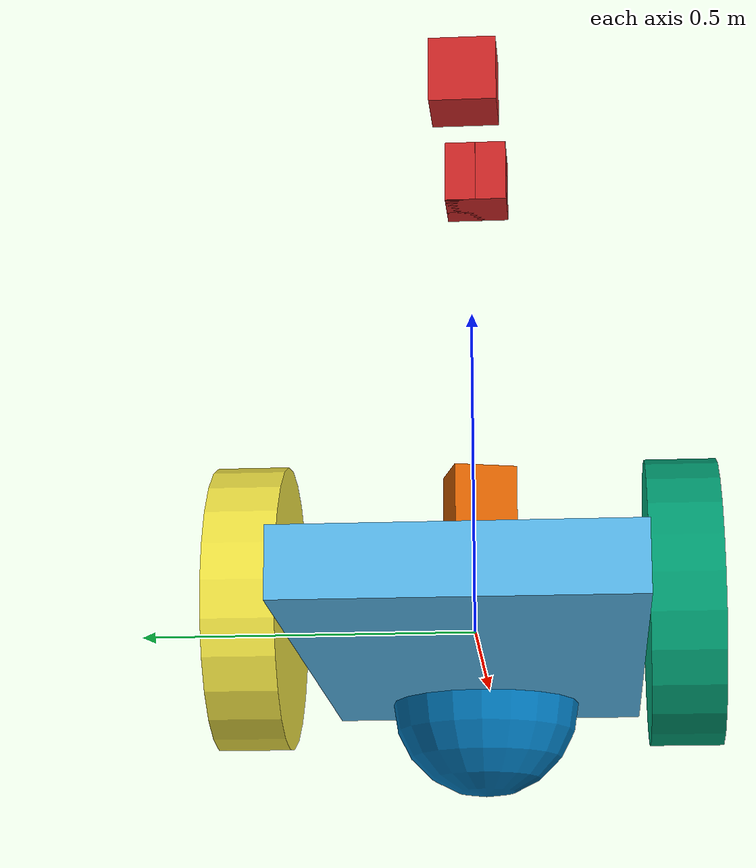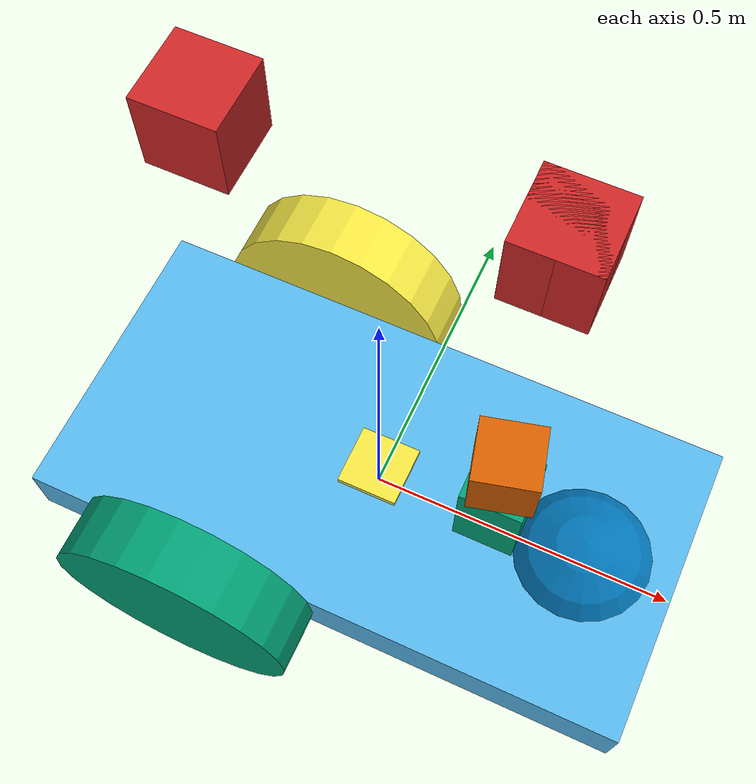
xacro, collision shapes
<?xml version="1.0"?>
<robot xmlns:xacro="http://www.ros.org/wiki/xacro" name="igvc_robot">

  <xacro:property name="base_link_length" value="0.5"/>
  <xacro:property name="base_link_radius" value="0.4"/>
  <xacro:property name="M_PI" value="3.1415926535897931" />
  <xacro:property name="laser_min_range" value="0.1"/>
  <xacro:property name="laser_max_range" value="200.0"/>
  <xacro:property name="samples" value="40000"/>
  <xacro:property name="resolution" value="0.002"/>
  <xacro:property name="noise_mean" value="0.0"/>
  <xacro:property name="noise_stddev" value="0.01"/>

  <xacro:property name="mass" value="0.4" />
  <xacro:property name="length" value="0.1" />
  <xacro:property name="width" value="0.06" />
  <xacro:property name="height" value="0.06" />
  <!-- Dummy Link and Joint -->
  <link name="base_footprint">
  </link>

  <!-- Base Link -->
  <link name="base_link">
    <visual>
      <geometry>
        <box size="1 0.5 0.1"/>
      </geometry>
      <origin rpy="0 0 0" xyz="0 0 0"/>
    </visual>
    <collision>
      <geometry>
        <box size="1 0.5 0.1"/>
      </geometry>
      <origin rpy="0 0 0" xyz="0 0 0"/>
    </collision>
    <inertial>
      <origin rpy="0 0 0" xyz="0 0 0"/>
      <mass value="1"/>
      <inertia ixx="0.083" ixy="0" ixz="0" iyy="0.083" iyz="0" izz="0.083"/>
    </inertial>
  </link>

  <!-- Left Wheel Link -->
  <link name="right_wheel">
    <visual>
      <geometry>
        <cylinder length="0.1" radius="0.2"/>
      </geometry>
      <origin rpy="1.5708 1.5708 0" xyz="0 -0.3 0"/>
    </visual>
    <collision>
      <geometry>
        <cylinder length="0.1" radius="0.2"/>
      </geometry>
      <origin rpy="1.5708 1.5708 0" xyz="0 -0.3 0"/>
    </collision>
    <inertial>
      <origin rpy="1.5708 1.5708 0" xyz="0 -0.3 0"/>
      <mass value="0.5"/>
      <inertia ixx="0.006" ixy="0" ixz="0" iyy="0.006" iyz="0" izz="0.001"/>
    </inertial>
  </link>

  <!-- Right Wheel Link -->
  <link name="left_wheel">
    <visual>
      <geometry>
        <cylinder length="0.1" radius="0.2"/>
      </geometry>
      <origin rpy="1.5708 1.5708 0" xyz="0 0.3 0"/>
    </visual>
    <collision>
      <geometry>
        <cylinder length="0.1" radius="0.2"/>
      </geometry>
      <origin rpy="1.5708 1.5708 0" xyz="0 0.3 0"/>
    </collision>
    <inertial>
      <origin rpy="1.5708 1.5708 0" xyz="0 0.3 0"/>
      <mass value="0.5"/>
      <inertia ixx="0.006" ixy="0" ixz="0" iyy="0.006" iyz="0" izz="0.001"/>
    </inertial>
  </link>

  <link name="castor_wheel">
    <visual>
      <geometry>
        <sphere radius="0.15"/>
      </geometry>
      <origin rpy="0 0 0" xyz="0 0 0"/>
    </visual>
    <collision>
      <geometry>
        <sphere radius="0.15"/>
      </geometry>
      <origin rpy="0 0 0" xyz="0 0 0"/>
    </collision>
    <inertial>
      <mass value="0.3"/>
      <origin rpy="0 0 0" xyz="0 0 0"/>
      <inertia ixx="0.006" ixy="0" ixz="0" iyy="0.006" iyz="0" izz="0.001"/>
    </inertial>
  </link>

  <!-- Lidar Link -->
  <link name="lidar_link">
    <visual>
      <geometry>
        <box size="0.1 0.1 0.1"/>
      </geometry>
      <origin rpy="0 0 0" xyz="0 0 0"/>
    </visual>
    <collision>
      <geometry>
        <box size="0.1 0.1 0.1"/>
      </geometry>
      <origin rpy="0 0 0" xyz="0 0 0"/>
    </collision>
    <inertial>
      <mass value="0.05"/>
      <origin rpy="0 0 0" xyz="0 0 0"/>
      <inertia ixx="0.001" ixy="0" ixz="0" iyy="0.001" iyz="0" izz="0.001"/>
    </inertial>
  </link>

<link name="camera_link_forward">
    <collision>
      <origin xyz="0 0 0" rpy="0 0 0"/>
      <geometry>
    <box size="0.1 0.1 0.1"/>
      </geometry>
    </collision>

    <visual>
      <origin xyz="0 0 0" rpy="0 0 0"/>
      <geometry>
    <box size="0.1 0.1 0.1"/>
      </geometry>
      <material name="red"/>
    </visual>

    <inertial>
      <mass value="1e-5" />
      <origin xyz="0 0 0" rpy="0 0 0"/>
      <inertia ixx="1e-6" ixy="0" ixz="0" iyy="1e-6" iyz="0" izz="1e-6" />
    </inertial>
  </link>

<link name="camera_link_backward">
    <collision>
      <origin xyz="0 0 0" rpy="0 0 0"/>
      <geometry>
    <box size="0.1 0.1 0.1"/>
      </geometry>
    </collision>

    <visual>
      <origin xyz="0 0 0" rpy="0 0 0"/>
      <geometry>
    <box size="0.1 0.1 0.1"/>
      </geometry>
      <material name="red"/>
    </visual>

    <inertial>
      <mass value="1e-5" />
      <origin xyz="0 0 0" rpy="0 0 0"/>
      <inertia ixx="1e-6" ixy="0" ixz="0" iyy="1e-6" iyz="0" izz="1e-6" />
    </inertial>
  </link>

  <link name="camera_link_left">
    <collision>
      <origin xyz="0 0 0" rpy="0 0 0"/>
      <geometry>
    <box size="0.1 0.1 0.1"/>
      </geometry>
    </collision>

    <visual>
      <origin xyz="0 0 0" rpy="0 0 0"/>
      <geometry>
    <box size="0.1 0.1 0.1"/>
      </geometry>
      <material name="red"/>
    </visual>

    <inertial>
      <mass value="1e-5" />
      <origin xyz="0 0 0" rpy="0 0 0"/>
      <inertia ixx="1e-6" ixy="0" ixz="0" iyy="1e-6" iyz="0" izz="1e-6" />
    </inertial>
  </link>

  <link name="camera_link_right">
    <collision>
      <origin xyz="0 0 0" rpy="0 0 0"/>
      <geometry>
    <box size="0.1 0.1 0.1"/>
      </geometry>
    </collision>

    <visual>
      <origin xyz="0 0 0" rpy="0 0 0"/>
      <geometry>
    <box size="0.1 0.1 0.1"/>
      </geometry>
      <material name="red"/>
    </visual>

    <inertial>
      <mass value="1e-5" />
      <origin xyz="0 0 0" rpy="0 0 0"/>
      <inertia ixx="1e-6" ixy="0" ixz="0" iyy="1e-6" iyz="0" izz="1e-6" />
    </inertial>
  </link>

  <!-- Lidar Stand -->
  <link name="lidar_stand">
    <visual>
      <geometry>
        <box size="0.1 0.1 0.75"/>
      </geometry>
      <origin rpy="0 0 0" xyz="0 0 0"/>
    </visual>
    <collision>
      <geometry>
        <box size="0.1 0.1 0.2"/>
      </geometry>
      <origin rpy="0 0 0" xyz="0 0 0"/>
    </collision>
    <inertial>
      <mass value="0.05"/>
      <origin rpy="0 0 0" xyz="0 0 0"/>
      <inertia ixx="0.001" ixy="0" ixz="0" iyy="0.001" iyz="0" izz="0.001"/>
    </inertial>
  </link>
  <!-- IMU Link -->
  <link name="imu_link">
    <visual>
      <geometry>
        <box size="0.1 0.1 0.1"/>
      </geometry>
    </visual>
    <collision>
      <geometry>
        <box size="0.1 0.1 0.1"/>
      </geometry>
    </collision>

    <inertial>
      <mass value="0.01"/>
      <inertia ixx="0.001" ixy="0" ixz="0" iyy="0.001" iyz="0" izz="0.001"/>
    </inertial>
  </link>

  <link name = "camera_forward_frame">
  </link>

  <joint name = "camera_forward_frame_joint" type="fixed">
    <parent link="base_link"/>
    <child link = "camera_forward_frame"/>
    <origin xyz="0.2 0 0" rpy="0 0 0"/>
  </joint>

  <link name = "camera_backward_frame">
  </link>

  <joint name = "camera_backward_frame_joint" type="fixed">
    <parent link="base_link"/>
    <child link = "camera_backward_frame"/>
    <origin xyz="-0.2 0 0" rpy="0 0 3.14"/>
  </joint>

  <link name = "camera_left_frame">
  </link>

  <joint name = "camera_left_frame_joint" type="fixed">
    <parent link="base_link"/>
    <child link = "camera_left_frame"/>
    <origin xyz="0.2 0 0" rpy="0 0 1.57"/>
  </joint>

  <link name = "camera_right_frame">
  </link>

  <joint name = "camera_right_frame_joint" type="fixed">
    <parent link="base_link"/>
    <child link = "camera_right_frame"/>
    <origin xyz="0.2 0 0" rpy="0 0 -1.57"/>
  </joint>

  <!-- Joint Between Base Link and Left Wheel -->
  <joint name="left_wheel_joint" type="continuous">
    <parent link="base_link"/>
    <child link="left_wheel"/>
    <origin xyz="-0.2 0 0" rpy="0 0 0"/>
    <axis xyz="0 1 0"/>
  </joint>

  <joint name="base_footprint_joint" type="fixed">
    <parent link="base_link"/>
    <child link="base_footprint"/>
    <origin rpy="0 0 0" xyz="0 0 0"/>
  </joint>

  <!-- Joint Between Base Link and Right Wheel -->
  <joint name="right_wheel_joint" type="continuous">
    <parent link="base_link"/>
    <child link="right_wheel"/>
    <origin xyz="-0.2 0 0" rpy="0 0 0"/>
    <axis xyz="0 1 0"/>
  </joint>

  <joint name="castor_joint" type="fixed">
    <parent link="base_link"/>
    <child link="castor_wheel"/>
    <origin rpy="0 0 0" xyz="0.35 0 -0.05"/>
  </joint>

  <!-- Joint Between Base Link and Lidar Link -->
  <joint name="lidar_joint" type="fixed">
    <parent link="base_link"/>
    <child link="lidar_link"/>
    <origin xyz="0.2 0 0.25" rpy="0 0 0.25"/>
  </joint>
  <!-- Lidar stand joint -->

  <joint name="lidar_stand_joint" type="fixed">
    <parent link="base_link"/>
    <child link="lidar_stand"/>
    <origin xyz="0.2 0 0.1" rpy="0 0 0"/>
  </joint>

  <!-- IMU joint -->

  <joint name="imu_joint" type="fixed">
    <parent link="base_link"/>
    <child link="imu_link"/>
    <origin xyz="0 0 0.01"/>
  </joint>

  <joint name="camera_forward_joint" type="fixed">
    <parent link = "base_link"/>
    <child link="camera_link_forward"/>
    <origin xyz="0.2 0 0.8"/>
  </joint>

  <joint name="camera_backward_joint" type="fixed">
    <parent link = "base_link"/>
    <child link="camera_link_backward"/>
    <origin xyz="-0.2 0 0.8" rpy = "0 0 3.14"/>
  </joint>

  <joint name="camera_left_joint" type="fixed">
    <parent link = "base_link"/>
    <child link="camera_link_left"/>
    <origin xyz="0.2 0 0.8" rpy = "0 0 1.57"/>
  </joint>

  <joint name="camera_right_joint" type="fixed">
    <parent link = "base_link"/>
    <child link="camera_link_right"/>
    <origin xyz="0.2 0 0.8" rpy = "0 0 -1.57"/>
  </joint>

  <!-- Gazebo Plugin -->
<xacro:include filename="$(find realsense_ros_gazebo)/xacro/depthcam.xacro"/>

<xacro:realsense_d435 sensor_name="d435" parent_link="base_link" rate="10">
  <origin rpy="0 0 0 " xyz="0 0 0.5"/>
</xacro:realsense_d435>

<gazebo>
  <plugin name='diff_drive' filename='libgazebo_ros_diff_drive.so'>
    <ros>
      <namespace>/</namespace>
    </ros>

    <!-- wheels -->
    <left_joint>left_wheel_joint</left_joint>
    <right_joint>right_wheel_joint</right_joint>

    <!-- kinematics -->
    <wheel_separation>0.6</wheel_separation>
    <wheel_diameter>0.4</wheel_diameter>

    <!-- limits -->
    <max_wheel_torque>20</max_wheel_torque>
    <max_wheel_acceleration>1.0</max_wheel_acceleration>

    <!-- output -->
    <publish_odom>true</publish_odom>
    <publish_odom_tf>true</publish_odom_tf>
    <publish_wheel_tf>true</publish_wheel_tf>

    <odometry_frame>odom</odometry_frame>
    <robot_base_frame>base_link</robot_base_frame>
  </plugin>
</gazebo>

  <!-- LIDAR Plugin -->
<gazebo reference="lidar_link">
  <sensor type="gpu_ray" name="lidar-VLP16">
    <pose>0 0 0 0 0 0</pose>
    <visualize>false</visualize>
    <update_rate>40</update_rate>
    <ray>
      <scan>
				<horizontal>
				<samples>100</samples>
				<resolution>1</resolution>
				<min_angle>${0}</min_angle>
				<max_angle>${2*M_PI}</max_angle>
				</horizontal>
				<vertical>
				<samples>360</samples>
				<resolution>1</resolution>
				<min_angle>${-7.22/180*M_PI}</min_angle>
				<max_angle>${55.22/180*M_PI}</max_angle>
				</vertical>
			  </scan>
			  <range>
				<min>${laser_min_range}</min>
				<max>${laser_max_range}</max>
				<resolution>${resolution}</resolution>
			  </range>
			  <noise>
				<type>gaussian</type>
				<mean>${noise_mean}</mean>
				<stddev>${noise_stddev}</stddev>
			  </noise>
    </ray>
    <plugin name="gazebo_ros_laser_controller" filename="libgazebo_ros_ray_sensor.so">

    <outputType>sensor_msgs/PointCloud2</outputType>
    <topicName>Lidar/PointCloud</topicName>
    <frameName>lidar_link</frameName>
    </plugin>
  </sensor>
</gazebo>

  <gazebo reference="camera_link_forward">
    <sensor type="camera" name="camera_forward">
      <update_rate>30.0</update_rate>
      <camera name="camera_forward">
        <horizontal_fov>1.3962634</horizontal_fov>
        <image>
          <width>800</width>
          <height>800</height>
          <format>R8G8B8</format>
        </image>
        <clip>
          <near>0.02</near>
          <far>300</far>
        </clip>
        <noise>
          <type>gaussian</type>
          <!-- Noise is sampled independently per pixel on each frame.
               That pixel's noise value is added to each of its color
               channels, which at that point lie in the range [0,1]. -->
          <mean>0.0</mean>
          <stddev>0.007</stddev>
        </noise>
      </camera>
      <plugin name="camera_controller_forward" filename="libgazebo_ros_camera.so">
        <alwaysOn>true</alwaysOn>
        <updateRate>0.0</updateRate>
        <camera_name>camera_forward</camera_name>
        <imageTopicName>image_raw_forward</imageTopicName>
        <cameraInfoTopicName>camera_info_forward</cameraInfoTopicName>
        <frameName>camera_link_forward</frameName>
        <hackBaseline>0.07</hackBaseline>
        <distortionK1>0.0</distortionK1>
        <distortionK2>0.0</distortionK2>
        <distortionK3>0.0</distortionK3>
        <distortionT1>0.0</distortionT1>
        <distortionT2>0.0</distortionT2>
      </plugin>
    </sensor>
  </gazebo>

<gazebo reference="camera_link_backward">
    <sensor type="camera" name="camera_backward">
      <update_rate>30.0</update_rate>
      <camera name="camera_backward">
        <horizontal_fov>1.3962634</horizontal_fov>
        <image>
          <width>800</width>
          <height>800</height>
          <format>R8G8B8</format>
        </image>
        <clip>
          <near>0.02</near>
          <far>300</far>
        </clip>
        <noise>
          <type>gaussian</type>
          <mean>0.0</mean>
          <stddev>0.007</stddev>
        </noise>
      </camera>
      <plugin name="camera_controller_backward" filename="libgazebo_ros_camera.so">
        <alwaysOn>true</alwaysOn>
        <updateRate>0.0</updateRate>
        <camera_name>camera_backward</camera_name>
        <imageTopicName>image_raw_backward</imageTopicName>
        <cameraInfoTopicName>camera_info_backward</cameraInfoTopicName>
        <frameName>camera_link_backward</frameName>
        <hackBaseline>0.07</hackBaseline>
        <distortionK1>0.0</distortionK1>
        <distortionK2>0.0</distortionK2>
        <distortionK3>0.0</distortionK3>
        <distortionT1>0.0</distortionT1>
        <distortionT2>0.0</distortionT2>
      </plugin>
    </sensor>
  </gazebo>

  <gazebo reference="camera_link_left">
    <sensor type="camera" name="camera_left">
      <update_rate>30.0</update_rate>
      <camera name="camera_left">
        <horizontal_fov>1.3962634</horizontal_fov>
        <image>
          <width>800</width>
          <height>800</height>
          <format>R8G8B8</format>
        </image>
        <clip>
          <near>0.02</near>
          <far>300</far>
        </clip>
        <noise>
          <type>gaussian</type>
          <mean>0.0</mean>
          <stddev>0.007</stddev>
        </noise>
      </camera>
      <plugin name="camera_controller_left" filename="libgazebo_ros_camera.so">
        <alwaysOn>true</alwaysOn>
        <updateRate>0.0</updateRate>
        <camera_name>camera_left</camera_name>
        <imageTopicName>image_raw_left</imageTopicName>
        <cameraInfoTopicName>camera_info_left</cameraInfoTopicName>
        <frameName>camera_link_left</frameName>
        <hackBaseline>0.07</hackBaseline>
        <distortionK1>0.0</distortionK1>
        <distortionK2>0.0</distortionK2>
        <distortionK3>0.0</distortionK3>
        <distortionT1>0.0</distortionT1>
        <distortionT2>0.0</distortionT2>
      </plugin>
    </sensor>
  </gazebo>

<gazebo reference="camera_link_right">
    <sensor type="camera" name="camera_right">
      <update_rate>30.0</update_rate>
      <camera name="camera_right">
        <horizontal_fov>1.3962634</horizontal_fov>
        <image>
          <width>800</width>
          <height>800</height>
          <format>R8G8B8</format>
        </image>
        <clip>
          <near>0.02</near>
          <far>300</far>
        </clip>
        <noise>
          <type>gaussian</type>
          <mean>0.0</mean>
          <stddev>0.007</stddev>
        </noise>
      </camera>
      <plugin name="camera_controller_right" filename="libgazebo_ros_camera.so">
        <alwaysOn>true</alwaysOn>
        <updateRate>0.0</updateRate>
        <camera_name>camera_right</camera_name>
        <imageTopicName>image_raw_right</imageTopicName>
        <cameraInfoTopicName>camera_info_right</cameraInfoTopicName>
        <frameName>camera_link_right</frameName>
        <hackBaseline>0.07</hackBaseline>
        <distortionK1>0.0</distortionK1>
        <distortionK2>0.0</distortionK2>
        <distortionK3>0.0</distortionK3>
        <distortionT1>0.0</distortionT1>
        <distortionT2>0.0</distortionT2>
      </plugin>
    </sensor>
  </gazebo>
</robot>

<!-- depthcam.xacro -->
<robot xmlns:xacro="http://www.ros.org/wiki/xacro">

  <xacro:include filename="$(find realsense_ros_gazebo)/xacro/inertia_calc.xacro"/>

  <!-- INTEL REALSENSE D435 -->

  <xacro:macro name="realsense_d435" params="sensor_name parent_link *origin rate">

    <xacro:property name="d435_cam_depth_to_left_ir_offset" value="0.0"/>
    <xacro:property name="d435_cam_depth_to_right_ir_offset" value="-0.050"/>
    <xacro:property name="d435_cam_depth_to_color_offset" value="0.015"/>
    <xacro:property name="d435_cam_width" value="0.090"/>
    <xacro:property name="d435_cam_height" value="0.025"/>
    <xacro:property name="d435_cam_depth" value="0.02505"/>
    <xacro:property name="d435_cam_mass" value="0.564"/>
    <xacro:property name="d435_cam_mount_from_center_offset" value="0.0149"/>
    <xacro:property name="d435_cam_depth_px" value="${d435_cam_mount_from_center_offset}"/>
    <xacro:property name="d435_cam_depth_py" value="0.0175"/>
    <xacro:property name="d435_cam_depth_pz" value="${d435_cam_height/2}"/>

    <!-- camera body, with origin at bottom screw mount -->
    <joint name="${sensor_name}_joint" type="fixed">
      <xacro:insert_block name="origin" />
      <parent link="${parent_link}"/>
      <child link="${sensor_name}_bottom_screw_frame" />
    </joint>
    <link name="${sensor_name}_bottom_screw_frame"/>

    <joint name="${sensor_name}_link_joint" type="fixed">
      <origin xyz="0 ${d435_cam_depth_py} ${d435_cam_depth_pz}" rpy="0 0 0"/>
      <parent link="${sensor_name}_bottom_screw_frame"/>
      <child link="${sensor_name}_link" />
    </joint>

    <link name="${sensor_name}_link">
      <visual>
        <origin xyz="${d435_cam_mount_from_center_offset} ${-d435_cam_depth_py} 0" rpy="${pi/2} 0 ${pi/2}"/>
        <geometry>
          <mesh filename="package://realsense_ros_gazebo/meshes/realsense_d435.stl" />
        </geometry>
      </visual>
      <inertial>
        <mass value="${d435_cam_mass}" />
        <origin xyz="0 ${-d435_cam_depth_py} 0" rpy="0 0 0"/>
        <xacro:box_inertia m="${d435_cam_mass}" x="${d435_cam_depth}" y="${d435_cam_width}" z="${d435_cam_height}"/>
      </inertial>
    </link>

    <!-- camera depth joints and links -->
    <joint name="${sensor_name}_depth_joint" type="fixed">
      <origin xyz="0 0 0" rpy="0 0 0"/>
      <parent link="${sensor_name}_link"/>
      <child link="${sensor_name}_depth_frame" />
    </joint>
    <link name="${sensor_name}_depth_frame"/>

    <joint name="${sensor_name}_depth_optical_joint" type="fixed">
      <origin xyz="0 0 0" rpy="${-pi/2} 0 ${-pi/2}" />
      <parent link="${sensor_name}_depth_frame" />
      <child link="${sensor_name}_depth_optical_frame" />
    </joint>
    <link name="${sensor_name}_depth_optical_frame"/>

    <!-- camera left IR joints and links -->
    <joint name="${sensor_name}_left_ir_joint" type="fixed">
      <origin xyz="0 ${d435_cam_depth_to_left_ir_offset} 0" rpy="0 0 0" />
      <parent link="${sensor_name}_depth_frame" />
      <child link="${sensor_name}_left_ir_frame" />
    </joint>
    <link name="${sensor_name}_left_ir_frame"/>

    <joint name="${sensor_name}_left_ir_optical_joint" type="fixed">
      <origin xyz="0 0 0" rpy="${-pi/2} 0 ${-pi/2}" />
      <parent link="${sensor_name}_left_ir_frame" />
      <child link="${sensor_name}_left_ir_optical_frame" />
    </joint>
    <link name="${sensor_name}_left_ir_optical_frame"/>

    <!-- camera right IR joints and links -->
    <joint name="${sensor_name}_right_ir_joint" type="fixed">
      <origin xyz="0 ${d435_cam_depth_to_right_ir_offset} 0" rpy="0 0 0" />
      <parent link="${sensor_name}_depth_frame" />
      <child link="${sensor_name}_right_ir_frame" />
    </joint>
    <link name="${sensor_name}_right_ir_frame"/>

    <joint name="${sensor_name}_right_ir_optical_joint" type="fixed">
      <origin xyz="0 0 0" rpy="${-pi/2} 0 ${-pi/2}" />
      <parent link="${sensor_name}_right_ir_frame" />
      <child link="${sensor_name}_right_ir_optical_frame" />
    </joint>
    <link name="${sensor_name}_right_ir_optical_frame"/>

    <!-- camera color joints and links -->
    <joint name="${sensor_name}_color_joint" type="fixed">
      <origin xyz="0 ${d435_cam_depth_to_color_offset} 0" rpy="0 0 0" />
      <parent link="${sensor_name}_depth_frame" />
      <child link="${sensor_name}_color_frame" />
    </joint>
    <link name="${sensor_name}_color_frame"/>

    <joint name="${sensor_name}_color_optical_joint" type="fixed">
      <origin xyz="0 0 0" rpy="${-pi/2} 0 ${-pi/2}" />
      <parent link="${sensor_name}_color_frame" />
      <child link="${sensor_name}_color_optical_frame" />
    </joint>
    <link name="${sensor_name}_color_optical_frame"/>

    <!-- gazebo plugin -->

    <xacro:property name="deg_to_rad" value="0.01745329251994329577" />

    <gazebo reference="${sensor_name}_link">
      <self_collide>0</self_collide>
      <enable_wind>0</enable_wind>
      <kinematic>0</kinematic>
      <gravity>1</gravity>
      <mu2>1</mu2>
      <fdir1>0 0 0</fdir1>
      <kp>1e+13</kp>
      <kd>1</kd>

      <sensor name="${sensor_name}_color" type="camera">
        <camera name="${sensor_name}">
          <horizontal_fov>${69.4*deg_to_rad}</horizontal_fov>
          <image>
            <width>640</width>
            <height>480</height>
            <format>RGB_INT8</format>
          </image>
          <clip>
            <near>0.1</near>
            <far>100</far>
          </clip>
          <noise>
            <type>gaussian</type>
            <mean>0.0</mean>
            <stddev>0.007</stddev>
          </noise>
        </camera>
        <always_on>1</always_on>
        <update_rate>15</update_rate>
        <visualize>0</visualize>
      </sensor>
      <sensor name="${sensor_name}_ired1" type="camera">
        <camera name="${sensor_name}">
          <horizontal_fov>${85.2*deg_to_rad}</horizontal_fov>
          <image>
            <width>640</width>
            <height>480</height>
            <format>L_INT8</format>
          </image>
          <clip>
            <near>0.1</near>
            <far>100</far>
          </clip>
          <noise>
            <type>gaussian</type>
            <mean>0.0</mean>
            <stddev>0.05</stddev>
          </noise>
        </camera>
        <always_on>1</always_on>
        <update_rate>${rate}</update_rate>
        <visualize>0</visualize>
      </sensor>
      <sensor name="${sensor_name}_ired2" type="camera">
        <camera name="${sensor_name}">
          <horizontal_fov>${85.2*deg_to_rad}</horizontal_fov>
          <image>
            <width>640</width>
            <height>480</height>
            <format>L_INT8</format>
          </image>
          <clip>
            <near>0.1</near>
            <far>100</far>
          </clip>
          <noise>
            <type>gaussian</type>
            <mean>0.0</mean>
            <stddev>0.05</stddev>
          </noise>
        </camera>
        <always_on>1</always_on>
        <update_rate>${rate}</update_rate>
        <visualize>0</visualize>
      </sensor>
      <sensor name="${sensor_name}_depth" type="depth">
        <camera name="${sensor_name}">
          <horizontal_fov>${85.2*deg_to_rad}</horizontal_fov>
          <image>
            <width>640</width>
            <height>480</height>
          </image>
          <clip>
            <near>0.1</near>
            <far>100</far>
          </clip>
          <noise>
            <type>gaussian</type>
            <mean>0.0</mean>
            <stddev>0.100</stddev>
          </noise>
        </camera>
        <always_on>1</always_on>
        <update_rate>${rate}</update_rate>
        <visualize>0</visualize>
      </sensor>
    </gazebo>

    <gazebo>
      <plugin name="${sensor_name}" filename="librealsense_gazebo_plugin.so">
        <prefix>${sensor_name}_</prefix>
        <depthUpdateRate>${rate}</depthUpdateRate>
        <colorUpdateRate>15</colorUpdateRate>
        <infraredUpdateRate>${rate}</infraredUpdateRate>
        <depthTopicName>depth/image_rect_raw</depthTopicName>
        <depthCameraInfoTopicName>depth/camera_info</depthCameraInfoTopicName>
        <colorTopicName>color/image_raw</colorTopicName>
        <colorCameraInfoTopicName>color/camera_info</colorCameraInfoTopicName>
        <infrared1TopicName>infra1/image_rect_raw</infrared1TopicName>
        <infrared1CameraInfoTopicName>infra1/camera_info</infrared1CameraInfoTopicName>
        <infrared2TopicName>infra2/image_rect_raw</infrared2TopicName>
        <infrared2CameraInfoTopicName>infra2/camera_info</infrared2CameraInfoTopicName>
        <colorOpticalframeName>${sensor_name}_color_optical_frame</colorOpticalframeName>
        <depthOpticalframeName>${sensor_name}_depth_optical_frame</depthOpticalframeName>
        <infrared1OpticalframeName>${sensor_name}_infra1_optical_frame</infrared1OpticalframeName>
        <infrared2OpticalframeName>${sensor_name}_infra2_optical_frame</infrared2OpticalframeName>
        <rangeMinDepth>0.2</rangeMinDepth>
        <rangeMaxDepth>10.0</rangeMaxDepth>
        <pointCloud>true</pointCloud>
        <pointCloudTopicName>depth/color/points</pointCloudTopicName>
        <pointCloudCutoff>0.25</pointCloudCutoff>
        <pointCloudCutoffMax>9.0</pointCloudCutoffMax>
      </plugin>
    </gazebo>

  </xacro:macro>

  <!-- INTEL REALSENSE R200 -->

  <xacro:macro name="realsense_R200" params="sensor_name parent_link rate *origin">

      <link name="${sensor_name}_R200_camera">
          <visual>
              <origin rpy="0 0 0" xyz="0 0 0"/>
              <geometry>
                  <mesh filename="package://realsense_ros_gazebo/meshes/realsense_r200/meshes/realsense.dae"/>
              </geometry>
          </visual>
          <inertial>
              <mass value="0.0615752"/>
              <origin rpy="0 0 0" xyz="0 0 0"/>
              <inertia ixx="9.108e-05"
                       ixy="0"
                       ixz="0"
                       iyy="2.51e-06"
                       iyz="0"
                       izz="8.931e-05"/>
          </inertial>
      </link>

      <joint name="${sensor_name}_joint" type="fixed">
          <parent link="${parent_link}"/>
          <child link="${sensor_name}_R200_camera"/>
          <xacro:insert_block name="origin"/>
      </joint>

      <link name="${sensor_name}_color" />
      <link name="${sensor_name}_depth" />
      <link name="${sensor_name}_ired1" />
      <link name="${sensor_name}_ired2" />

      <joint name="${sensor_name}_color_joint" type="fixed">
          <parent link="${sensor_name}_R200_camera" />
          <child link="${sensor_name}_color" />
          <origin xyz="0 -0.046 0.004" rpy="${pi/2} ${pi} ${pi/2}"/>
      </joint>

      <joint name="${sensor_name}_depth_joint" type="fixed">
          <parent link="${sensor_name}_R200_camera" />
          <child link="${sensor_name}_depth" />
          <origin xyz="0 -0.03 0.004" rpy="0 0 0"/>
      </joint>

      <joint name="${sensor_name}_ired1_joint" type="fixed">
          <parent link="${sensor_name}_R200_camera" />
          <child link="${sensor_name}_ired1" />
          <origin xyz="0 -0.06 0.004" rpy="0 0 0"/>
      </joint>

      <joint name="${sensor_name}_ired2_joint" type="fixed">
          <parent link="${sensor_name}_R200_camera" />
          <child link="${sensor_name}_ired2" />
          <origin xyz="0 0.01 0.004" rpy="0 0 0"/>
      </joint>

      <gazebo reference="${sensor_name}_R200_camera">

          <self_collide>0</self_collide>
          <enable_wind>0</enable_wind>
          <kinematic>0</kinematic>
          <gravity>1</gravity>
          <mu>1</mu>
          <mu2>1</mu2>
          <fdir1>0 0 0</fdir1>
          <slip1>0</slip1>
          <slip2>0</slip2>
          <kp>1e+13</kp>
          <kd>1</kd>
          <max_vel>0.01</max_vel>
          <min_depth>0</min_depth>

          <sensor name="${sensor_name}_color" type="camera">
              <pose frame="">0 -0.046 0.004 0 0 0</pose>
              <camera name="${sensor_name}_R200_camera">
              <horizontal_fov>1.047</horizontal_fov>
              <image>
                  <width>640</width>
                  <height>480</height>
                  <format>RGB_INT8</format>
              </image>
              <clip>
                  <near>0.1</near>
                  <far>100</far>
              </clip>
              <noise>
                  <type>gaussian</type>
                  <mean>0.0</mean>
                  <stddev>0.007</stddev>
              </noise>
              </camera>
              <always_on>1</always_on>
              <update_rate>${rate}</update_rate>
              <visualize>0</visualize>
          </sensor>
          <sensor name="${sensor_name}_ired1" type="camera">
              <pose frame="">0 -0.06 0.004 0 0 0</pose>
              <camera name="${sensor_name}_R200_camera">
              <horizontal_fov>1.047</horizontal_fov>
              <image>
                  <width>640</width>
                  <height>480</height>
                  <format>L_INT8</format>
              </image>
              <clip>
                  <near>0.1</near>
                  <far>100</far>
              </clip>
              <noise>
                  <type>gaussian</type>
                  <mean>0.0</mean>
                  <stddev>0.05</stddev>
              </noise>
              </camera>
              <always_on>1</always_on>
              <update_rate>${rate}</update_rate>
              <visualize>0</visualize>
          </sensor>
          <sensor name="${sensor_name}_ired2" type="camera">
              <pose frame="">0 0.01 0.004 0 0 0</pose>
              <camera name="${sensor_name}_R200_camera">
              <horizontal_fov>1.047</horizontal_fov>
              <image>
                  <width>640</width>
                  <height>480</height>
                  <format>L_INT8</format>
              </image>
              <clip>
                  <near>0.1</near>
                  <far>100</far>
              </clip>
              <noise>
                  <type>gaussian</type>
                  <mean>0.0</mean>
                  <stddev>0.05</stddev>
              </noise>
              </camera>
              <always_on>1</always_on>
              <update_rate>${rate}</update_rate>
              <visualize>0</visualize>
          </sensor>
          <sensor name="${sensor_name}_depth" type="depth">
              <pose frame="">0 -0.03 0.004 0 0 0</pose>
              <camera name="${sensor_name}_R200_camera">
              <horizontal_fov>1.047</horizontal_fov>
              <image>
                      <width>640</width>
                      <height>480</height>
              </image>
              <clip>
                      <near>0.1</near>
                      <far>100</far>
              </clip>
              <noise>
                      <type>gaussian</type>
                      <mean>0.0</mean>
                      <stddev>0.100</stddev>
              </noise>
              </camera>
              <always_on>1</always_on>
              <update_rate>60</update_rate>
              <visualize>0</visualize>
          </sensor>
      </gazebo>

      <gazebo>
        <plugin name="${sensor_name}" filename="librealsense_gazebo_plugin.so">
          <prefix>${sensor_name}_</prefix>
          <depthUpdateRate>${rate}</depthUpdateRate>
          <colorUpdateRate>${rate}</colorUpdateRate>
          <infraredUpdateRate>${rate}</infraredUpdateRate>
          <depthTopicName>depth/image_rect_raw</depthTopicName>
          <depthCameraInfoTopicName>depth/camera_info</depthCameraInfoTopicName>
          <colorTopicName>color/image_raw</colorTopicName>
          <colorCameraInfoTopicName>color/camera_info</colorCameraInfoTopicName>
          <infrared1TopicName>infra1/image_rect_raw</infrared1TopicName>
          <infrared1CameraInfoTopicName>infra1/camera_info</infrared1CameraInfoTopicName>
          <infrared2TopicName>infra2/image_rect_raw</infrared2TopicName>
          <infrared2CameraInfoTopicName>infra2/camera_info</infrared2CameraInfoTopicName>
          <colorOpticalframeName>${sensor_name}_color_optical_frame</colorOpticalframeName>
          <depthOpticalframeName>${sensor_name}_depth_optical_frame</depthOpticalframeName>
          <infrared1OpticalframeName>${sensor_name}_infra1_optical_frame</infrared1OpticalframeName>
          <infrared2OpticalframeName>${sensor_name}_infra2_optical_frame</infrared2OpticalframeName>
          <rangeMinDepth>0.2</rangeMinDepth>
          <rangeMaxDepth>10.0</rangeMaxDepth>
          <pointCloud>true</pointCloud>
          <pointCloudTopicName>depth/color/points</pointCloudTopicName>
          <pointCloudCutoff>0.25</pointCloudCutoff>
          <pointCloudCutoffMax>9.0</pointCloudCutoffMax>
        </plugin>
      </gazebo>

  </xacro:macro>

</robot>
